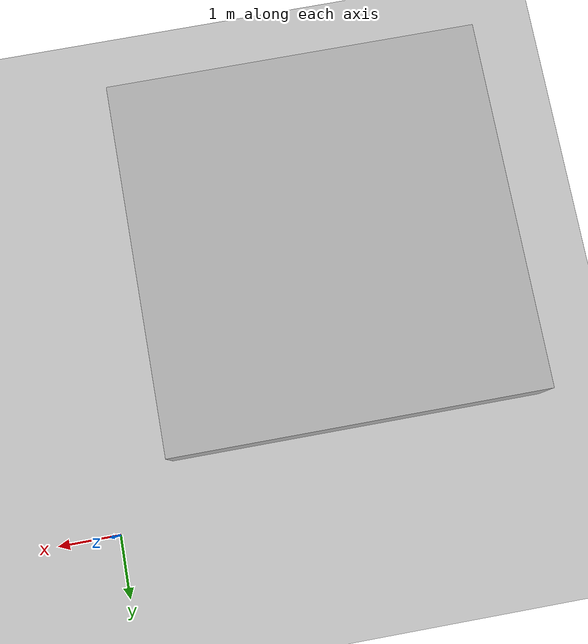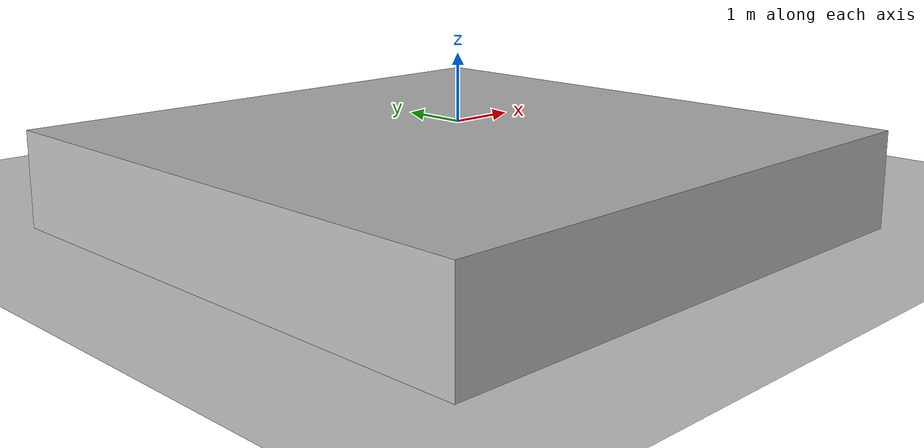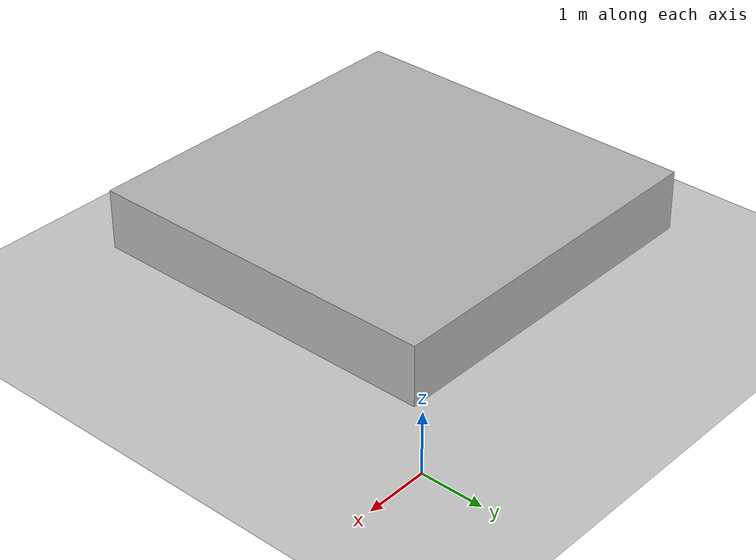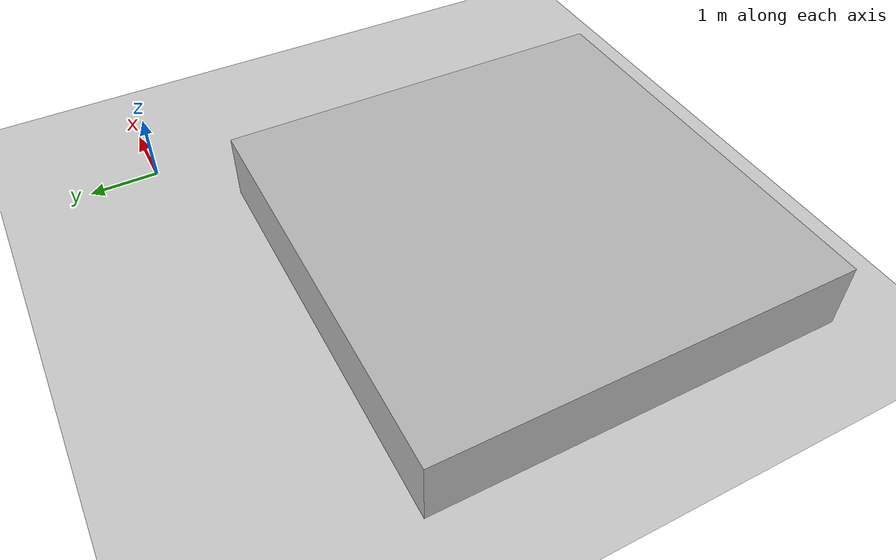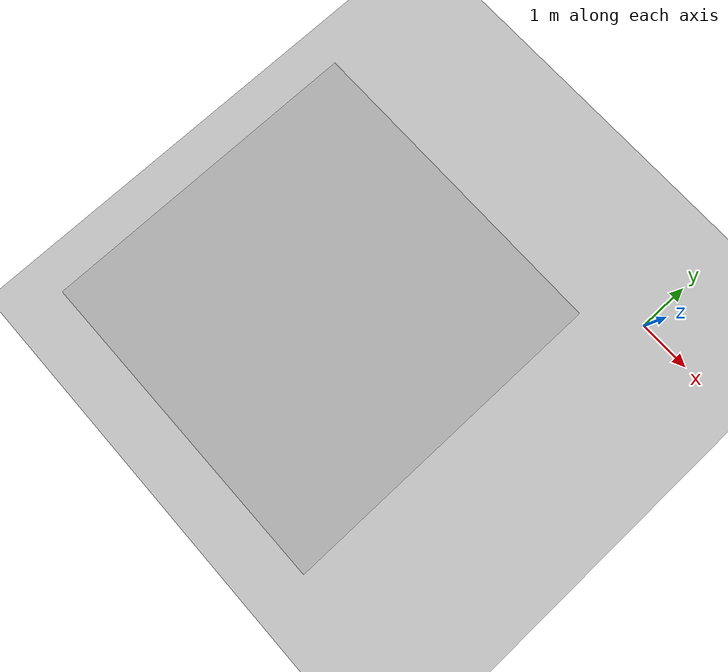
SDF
<?xml version="1.0"?>
<sdf version="1.4">

  <world name="default">
    <include>
      <uri>model://ground_plane</uri>
    </include>

    <!-- Global light source -->
    <include>
      <uri>model://sun</uri>
    </include>

    <model name='box'>
		<link name='box_link'>
			<pose>-4 -4 0.5 0 0 0</pose>
			<visual name='box_visual'>
				<geometry>
					<box>
						<size>6 6 1</size>
					</box>
				</geometry>
			</visual>
			<collision name='box_collision'>
				<geometry>
					<box>
						<size>6 6 1</size>
					</box>
				</geometry>
			</collision>
		</link>
	</model>

  </world>
</sdf>
